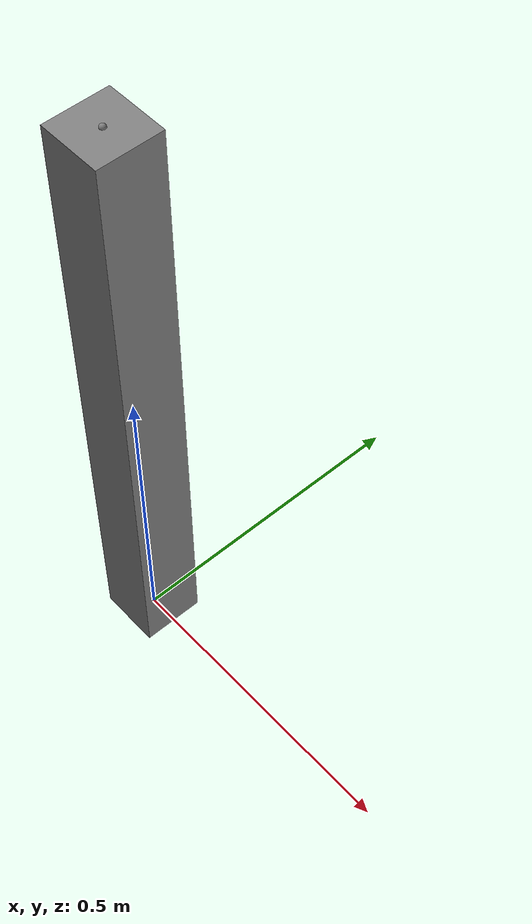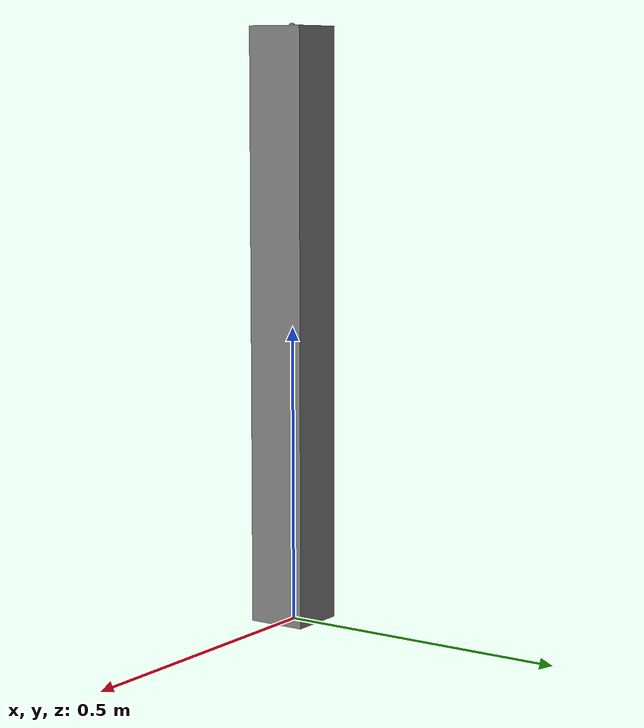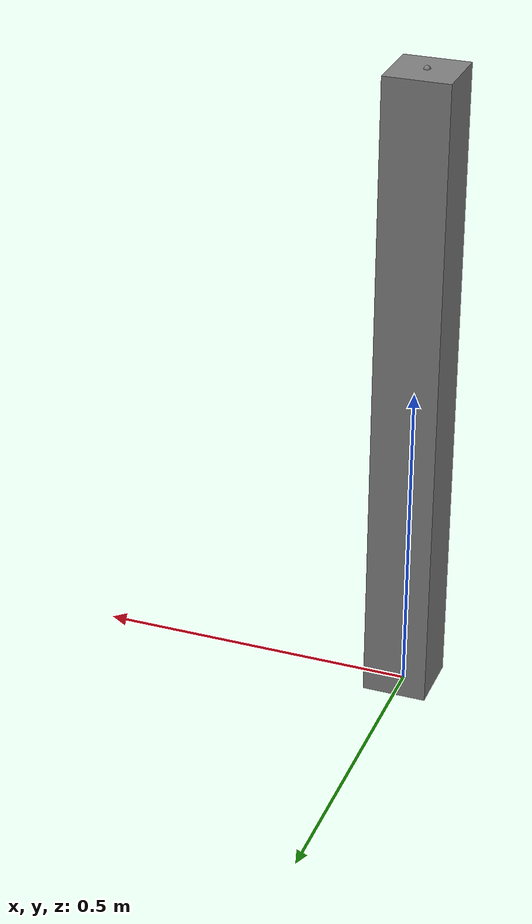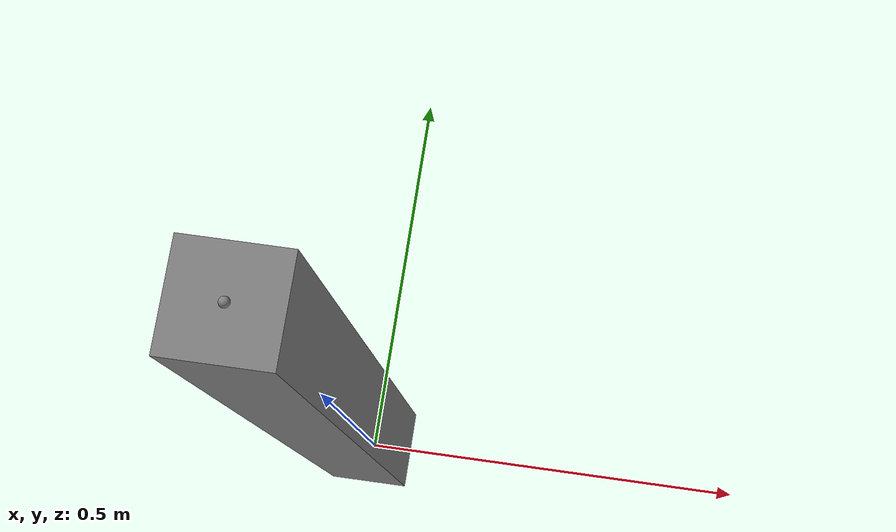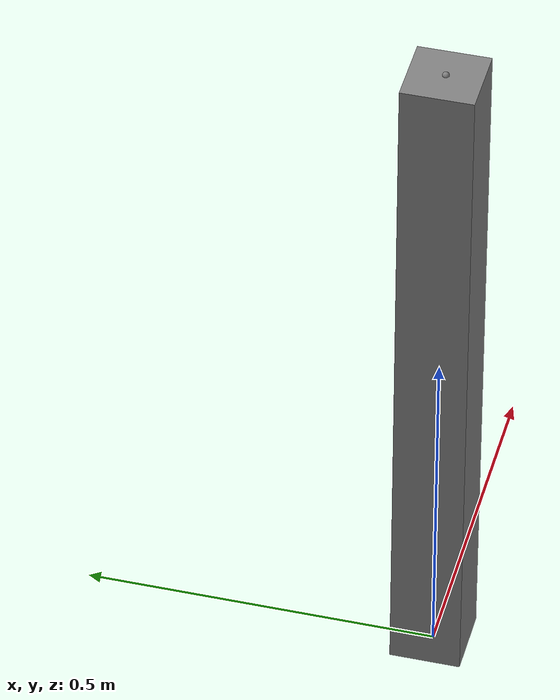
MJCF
<!-- P3 最小联调场景：单铰链倒立摆 + motor 执行器。
     theta=0 为直立位置（摆杆沿 +z 方向），符合 Gymnasium Pendulum-v1 惯例。
     用于验证 OrcaGymEulerEnv 端到端链路（模型加载、步进、状态同步、渲染）。 -->
<mujoco model="euler_simple_pendulum">
  <option timestep="0.002" integrator="RK4" gravity="0 0 -9.81"/>
  <worldbody>
    <body name="pendulum" pos="0 0 0">
      <joint name="hinge" type="hinge" axis="0 1 0" pos="0 0 0"/>
      <geom name="arm" type="box" size="0.05 0.05 0.5" pos="0 0 0.5" mass="1"/>
      <site name="tip" pos="0 0 1.0"/>
    </body>
  </worldbody>
  <actuator>
    <motor name="hinge_motor" joint="hinge" gear="10"/>
  </actuator>
</mujoco>
